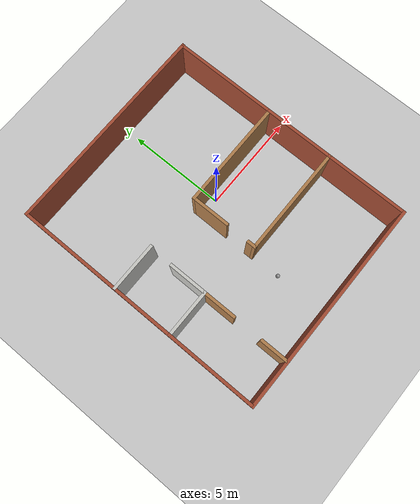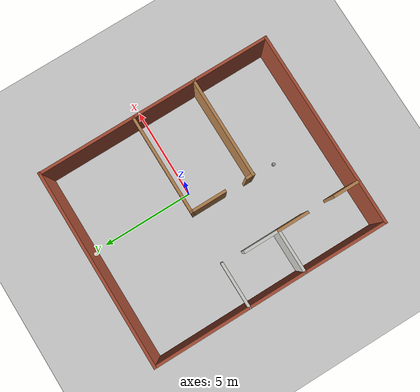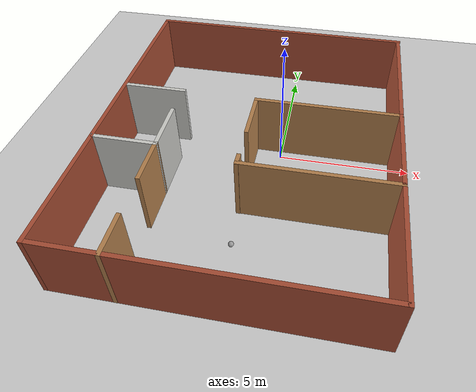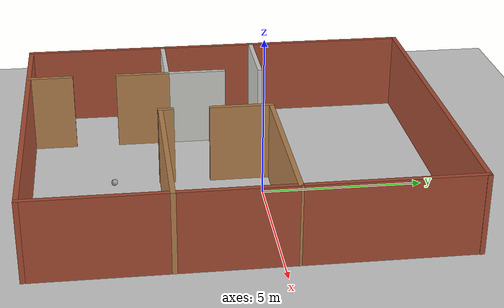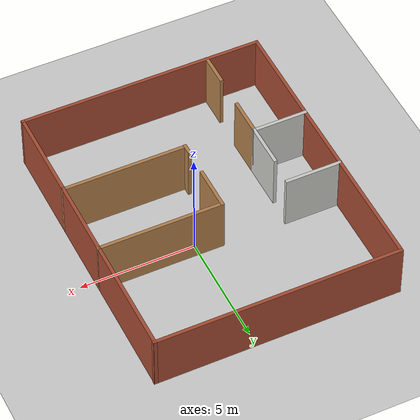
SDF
<sdf version="1.7">
 <world name="default">
  <plugin name="welcom" filename="libwelcome.so"/>
  <light name="sun" type="directional">
   <pose>0 0 10 0 -0 0</pose>
   <diffuse>0.8 0.8 0.8 1</diffuse>
   <specular>0.2 0.2 0.2 1</specular>
   <attenuation>
    <range>1000</range>
    <constant>0.9</constant>
    <linear>0.01</linear>
    <quadratic>0.001</quadratic>
   </attenuation>
   <direction>-0.5 0.1 -0.9</direction>
   <spot><inner_angle>0</inner_angle><outer_angle>0</outer_angle><falloff>0</falloff></spot>
  </light>
  <model name="ground_plane">
   <static>1</static>
   <link name="link">
    <collision name="collision">
     <geometry><plane><normal>0 0 1</normal><size>100 100</size></plane></geometry>
     <surface>
      <contact><collide_bitmask>65535</collide_bitmask></contact>
      <friction><ode><mu>100</mu><mu2>50</mu2></ode></friction>
     </surface>
    </collision>
    <visual name="visual">
     <cast_shadows>0</cast_shadows>
     <geometry><plane><normal>0 0 1</normal><size>100 100</size></plane></geometry>
     <material>
      <script><uri>file://media/materials/scripts/gazebo.material</uri><name>Gazebo/Grey</name></script>
     </material>
    </visual>
   </link>
  </model>
  <gravity>0 0 -9.8</gravity>
  <magnetic_field>6e-06 2.3e-05 -4.2e-05</magnetic_field>
  <atmosphere type="adiabatic"/>
  <physics type="ode">
   <max_step_size>0.001</max_step_size>
   <real_time_factor>1</real_time_factor>
   <real_time_update_rate>1000</real_time_update_rate>
  </physics>
  <scene><ambient>0.4 0.4 0.4 1</ambient><background>0.7 0.7 0.7 1</background><shadows>1</shadows></scene>
  <spherical_coordinates>
   <surface_model>EARTH_WGS84</surface_model>
   <latitude_deg>0</latitude_deg>
   <longitude_deg>0</longitude_deg>
   <elevation>0</elevation>
   <heading_deg>0</heading_deg>
  </spherical_coordinates>
  <model name="mybuilding">
   <pose>-0.984529 -0.77435 0 0 -0 0</pose>
   <link name="Wall_1">
    <collision name="Wall_1_Collision">
     <geometry><box><size>10.75 0.15 2.5</size></box></geometry>
     <pose>0 0 1.25 0 -0 0</pose>
    </collision>
    <visual name="Wall_1_Visual">
     <pose>0 0 1.25 0 -0 0</pose>
     <geometry><box><size>10.75 0.15 2.5</size></box></geometry>
     <material>
      <script><uri>file://media/materials/scripts/gazebo.material</uri><name>Gazebo/Bricks</name></script>
      <ambient>1 0.764706 0.305882 1</ambient>
     </material>
     <meta><layer>0</layer></meta>
    </visual>
    <pose>0.007558 6.36268 0 0 -0 0</pose>
   </link>
   <link name="Wall_2">
    <collision name="Wall_2_Collision">
     <geometry><box><size>5.34469 0.15 2.5</size></box></geometry>
     <pose>0 0 1.25 0 -0 0</pose>
    </collision>
    <visual name="Wall_2_Visual">
     <pose>0 0 1.25 0 -0 0</pose>
     <geometry><box><size>5.34469 0.15 2.5</size></box></geometry>
     <material>
      <script><uri>file://media/materials/scripts/gazebo.material</uri><name>Gazebo/Bricks</name></script>
      <ambient>1 0.764706 0.305882 1</ambient>
     </material>
     <meta><layer>0</layer></meta>
    </visual>
    <pose>5.29235 3.76538 0 0 -0 -1.5708</pose>
   </link>
   <link name="Wall_20">
    <collision name="Wall_20_Collision">
     <geometry><box><size>2.46292 0.15 2.5</size></box></geometry>
     <pose>0 0 1.25 0 -0 0</pose>
    </collision>
    <visual name="Wall_20_Visual">
     <pose>0 0 1.25 0 -0 0</pose>
     <geometry><box><size>2.46292 0.15 2.5</size></box></geometry>
     <material>
      <script><uri>file://media/materials/scripts/gazebo.material</uri><name>Gazebo/CeilingTiled</name></script>
      <ambient>0.435294 0.796078 0.67451 1</ambient>
     </material>
     <meta><layer>0</layer></meta>
    </visual>
    <pose>-4.13693 -1.86591 0 0 -0 -3.14159</pose>
   </link>
   <link name="Wall_21">
    <collision name="Wall_21_Collision">
     <geometry><box><size>8.25 0.15 2.5</size></box></geometry>
     <pose>0 0 1.25 0 -0 0</pose>
    </collision>
    <visual name="Wall_21_Visual">
     <pose>0 0 1.25 0 -0 0</pose>
     <geometry><box><size>8.25 0.15 2.5</size></box></geometry>
     <material>
      <script><uri>file://media/materials/scripts/gazebo.material</uri><name>Gazebo/Bricks</name></script>
      <ambient>1 0.764706 0.305882 1</ambient>
     </material>
     <meta><layer>0</layer></meta>
    </visual>
    <pose>-5.29339 2.18409 0 0 -0 1.5708</pose>
   </link>
   <link name="Wall_23">
    <collision name="Wall_23_Collision">
     <geometry><box><size>2 0.15 2.5</size></box></geometry>
     <pose>0 0 1.25 0 -0 0</pose>
    </collision>
    <visual name="Wall_23_Visual">
     <pose>0 0 1.25 0 -0 0</pose>
     <geometry><box><size>2 0.15 2.5</size></box></geometry>
     <material>
      <script><uri>file://media/materials/scripts/gazebo.material</uri><name>Gazebo/CeilingTiled</name></script>
      <ambient>0.996078 0.47451 0.0196078 1</ambient>
     </material>
     <meta><layer>0</layer></meta>
    </visual>
    <pose>-2.98047 -0.940907 0 0 -0 1.5708</pose>
   </link>
   <link name="Wall_26">
    <collision name="Wall_26_Collision">
     <geometry><box><size>4.25 0.15 2.5</size></box></geometry>
     <pose>0 0 1.25 0 -0 0</pose>
    </collision>
    <visual name="Wall_26_Visual">
     <pose>0 0 1.25 0 -0 0</pose>
     <geometry><box><size>4.25 0.15 2.5</size></box></geometry>
     <material>
      <script><uri>file://media/materials/scripts/gazebo.material</uri><name>Gazebo/Bricks</name></script>
      <ambient>0.435294 0.796078 0.67451 1</ambient>
     </material>
     <meta><layer>0</layer></meta>
    </visual>
    <pose>5.29268 -4.30974 0 0 -0 -1.5708</pose>
   </link>
   <link name="Wall_27">
    <collision name="Wall_27_Collision">
     <geometry><box><size>10.75 0.15 2.5</size></box></geometry>
     <pose>0 0 1.25 0 -0 0</pose>
    </collision>
    <visual name="Wall_27_Visual">
     <pose>0 0 1.25 0 -0 0</pose>
     <geometry><box><size>10.75 0.15 2.5</size></box></geometry>
     <material>
      <script><uri>file://media/materials/scripts/gazebo.material</uri><name>Gazebo/Bricks</name></script>
      <ambient>0.435294 0.796078 0.67451 1</ambient>
     </material>
     <meta><layer>0</layer></meta>
    </visual>
    <pose>-0.007325 -6.35974 0 0 -0 3.14159</pose>
   </link>
   <link name="Wall_28">
    <collision name="Wall_28_Collision">
     <geometry><box><size>4.6445 0.15 2.5</size></box></geometry>
     <pose>0 0 1.25 0 -0 0</pose>
    </collision>
    <visual name="Wall_28_Visual">
     <pose>0 0 1.25 0 -0 0</pose>
     <geometry><box><size>4.6445 0.15 2.5</size></box></geometry>
     <material>
      <script><uri>file://media/materials/scripts/gazebo.material</uri><name>Gazebo/Bricks</name></script>
      <ambient>0.435294 0.796078 0.67451 1</ambient>
     </material>
     <meta><layer>0</layer></meta>
    </visual>
    <pose>-5.30036 -4.11282 0 0 -0 1.5677</pose>
   </link>
   <link name="Wall_3">
    <collision name="Wall_3_Collision">
     <geometry><box><size>5.5 0.15 2.5</size></box></geometry>
     <pose>0 0 1.25 0 -0 0</pose>
    </collision>
    <visual name="Wall_3_Visual">
     <pose>0 0 1.25 0 -0 0</pose>
     <geometry><box><size>5.5 0.15 2.5</size></box></geometry>
     <material>
      <script><uri>file://media/materials/scripts/gazebo.material</uri><name>Gazebo/Wood</name></script>
      <ambient>0.996078 0.47451 0.0196078 1</ambient>
     </material>
     <meta><layer>0</layer></meta>
    </visual>
    <pose>2.61735 1.16808 0 0 -0 3.14159</pose>
   </link>
   <link name="Wall_32">
    <collision name="Wall_32_Collision">
     <geometry><box><size>1.5 0.15 2.5</size></box></geometry>
     <pose>0 0 1.25 0 -0 0</pose>
    </collision>
    <visual name="Wall_32_Visual">
     <pose>0 0 1.25 0 -0 0</pose>
     <geometry><box><size>1.5 0.15 2.5</size></box></geometry>
     <material>
      <script><uri>file://media/materials/scripts/gazebo.material</uri><name>Gazebo/Wood</name></script>
      <ambient>0.435294 0.796078 0.67451 1</ambient>
     </material>
     <meta><layer>0</layer></meta>
    </visual>
    <pose>-2.9997 -5.68773 0 0 -0 1.5708</pose>
   </link>
   <link name="Wall_34">
    <collision name="Wall_34_Collision">
     <geometry><box><size>1.75 0.15 2.5</size></box></geometry>
     <pose>0 0 1.25 0 -0 0</pose>
    </collision>
    <visual name="Wall_34_Visual">
     <pose>0 0 1.25 0 -0 0</pose>
     <geometry><box><size>1.75 0.15 2.5</size></box></geometry>
     <material>
      <script><uri>file://media/materials/scripts/gazebo.material</uri><name>Gazebo/Wood</name></script>
      <ambient>0.435294 0.796078 0.67451 1</ambient>
     </material>
     <meta><layer>0</layer></meta>
    </visual>
    <pose>-2.98047 -2.66591 0 0 -0 -1.5708</pose>
   </link>
   <link name="Wall_36">
    <collision name="Wall_36_Collision">
     <geometry><box><size>2.5 0.15 2.5</size></box></geometry>
     <pose>0 0 1.25 0 -0 0</pose>
    </collision>
    <visual name="Wall_36_Visual">
     <pose>0 0 1.25 0 -0 0</pose>
     <geometry><box><size>2.5 0.15 2.5</size></box></geometry>
     <material>
      <script><uri>file://media/materials/scripts/gazebo.material</uri><name>Gazebo/CeilingTiled</name></script>
      <ambient>0.996078 0.47451 0.0196078 1</ambient>
     </material>
     <meta><layer>0</layer></meta>
    </visual>
    <pose>-4.09706 1.21375 0 0 -0 0</pose>
   </link>
   <link name="Wall_4">
    <collision name="Wall_4_Collision">
     <geometry><box><size>2 0.15 2.5</size></box></geometry>
     <pose>0 0 1.25 0 -0 0</pose>
    </collision>
    <visual name="Wall_4_Visual">
     <pose>0 0 1.25 0 -0 0</pose>
     <geometry><box><size>2 0.15 2.5</size></box></geometry>
     <material>
      <script><uri>file://media/materials/scripts/gazebo.material</uri><name>Gazebo/Wood</name></script>
      <ambient>0.996078 0.47451 0.0196078 1</ambient>
     </material>
     <meta><layer>0</layer></meta>
    </visual>
    <pose>-0.05765 0.243083 0 0 -0 -1.5708</pose>
   </link>
   <link name="Wall_7">
    <collision name="Wall_7_Collision">
     <geometry><box><size>0.5 0.15 2.5</size></box></geometry>
     <pose>0 0 1.25 0 -0 0</pose>
    </collision>
    <visual name="Wall_7_Visual">
     <pose>0 0 1.25 0 -0 0</pose>
     <geometry><box><size>0.5 0.15 2.5</size></box></geometry>
     <material>
      <script><uri>file://media/materials/scripts/gazebo.material</uri><name>Gazebo/Wood</name></script>
      <ambient>0.996078 0.47451 0.0196078 1</ambient>
     </material>
     <meta><layer>0</layer></meta>
    </visual>
    <pose>-0.072534 -2.09995 0 0 -0 -1.5708</pose>
   </link>
   <link name="Wall_8">
    <collision name="Wall_8_Collision">
     <geometry><box><size>5.51555 0.15 2.5</size></box></geometry>
     <pose>0 0 1.25 0 -0 0</pose>
    </collision>
    <visual name="Wall_8_Visual">
     <pose>0 0 1.25 0 -0 0</pose>
     <geometry><box><size>5.51555 0.15 2.5</size></box></geometry>
     <material>
      <script><uri>file://media/materials/scripts/gazebo.material</uri><name>Gazebo/Wood</name></script>
      <ambient>0.435294 0.796078 0.67451 1</ambient>
     </material>
     <meta><layer>0</layer></meta>
    </visual>
    <pose>2.61007 -2.25974 0 0 -0 0</pose>
   </link>
   <link name="Wall_9">
    <collision name="Wall_9_Collision">
     <geometry><box><size>3.57785 0.15 2.5</size></box></geometry>
     <pose>0 0 1.25 0 -0 0</pose>
    </collision>
    <visual name="Wall_9_Visual">
     <pose>0 0 1.25 0 -0 0</pose>
     <geometry><box><size>3.57785 0.15 2.5</size></box></geometry>
     <material>
      <script><uri>file://media/materials/scripts/gazebo.material</uri><name>Gazebo/Bricks</name></script>
      <ambient>0.996078 0.47451 0.0196078 1</ambient>
     </material>
     <meta><layer>0</layer></meta>
    </visual>
    <pose>5.29251 -0.54583 0 0 -0 1.57089</pose>
   </link>
   <static>1</static>
  </model>
  <model name="my_ball">
   <link name="link_0">
    <inertial>
     <mass>1</mass>
     <inertia><ixx>0.1</ixx><ixy>0</ixy><ixz>0</ixz><iyy>0.1</iyy><iyz>0</iyz><izz>0.1</izz></inertia>
    </inertial>
    <visual name="visual">
     <geometry><sphere><radius>0.1</radius></sphere></geometry>
     <material>
      <lighting>1</lighting>
      <script><uri>file://media/materials/scripts/gazebo.material</uri><name>Gazebo/Grey</name></script>
      <shader type="pixel"><normal_map>__default__</normal_map></shader>
      <ambient>1 1 1 1</ambient>
      <diffuse>1 1 1 1</diffuse>
      <specular>1 1 1 1</specular>
      <emissive>1 1 1 1</emissive>
     </material>
    </visual>
    <collision name="collision">
     <geometry><sphere><radius>0.1</radius></sphere></geometry>
     <surface>
      <friction>
       <ode><mu>1</mu><mu2>1</mu2><fdir1>0 0 0</fdir1><slip1>0</slip1><slip2>0</slip2></ode>
       <torsional>
        <coefficient>1</coefficient>
        <patch_radius>0</patch_radius>
        <surface_radius>0</surface_radius>
        <use_patch_radius>1</use_patch_radius>
        <ode><slip>0</slip></ode>
       </torsional>
      </friction>
      <bounce><restitution_coefficient>0</restitution_coefficient><threshold>1e+06</threshold></bounce>
      <contact>
       <collide_without_contact>0</collide_without_contact>
       <collide_without_contact_bitmask>1</collide_without_contact_bitmask>
       <collide_bitmask>1</collide_bitmask>
       <ode>
        <soft_cfm>0</soft_cfm>
        <soft_erp>0.2</soft_erp>
        <kp>1e+13</kp>
        <kd>1</kd>
        <max_vel>0.01</max_vel>
        <min_depth>0</min_depth>
       </ode>
       <bullet>
        <split_impulse>1</split_impulse>
        <split_impulse_penetration_threshold>-0.01</split_impulse_penetration_threshold>
        <soft_cfm>0</soft_cfm>
        <soft_erp>0.2</soft_erp>
        <kp>1e+13</kp>
        <kd>1</kd>
       </bullet>
      </contact>
     </surface>
    </collision>
   </link>
   <static>0</static>
   <pose>-0.986887 -4.5364 0.1 0 -0 0</pose>
  </model>
 </world>
</sdf>
